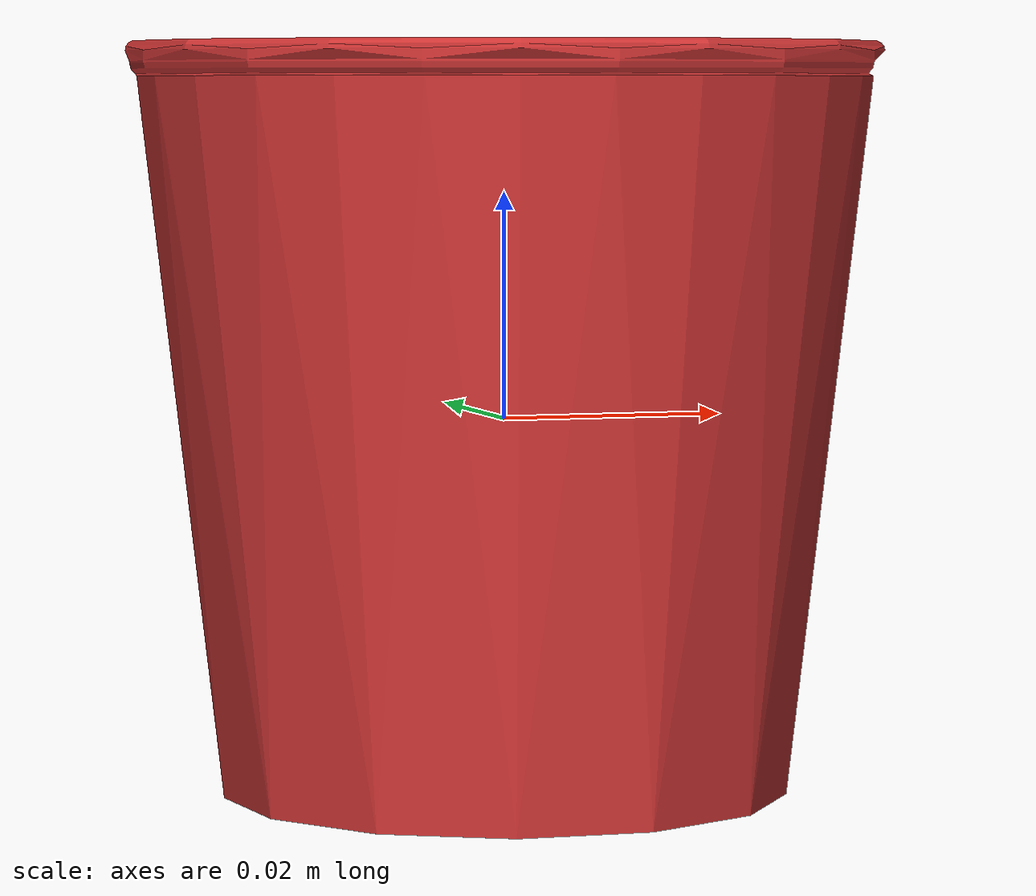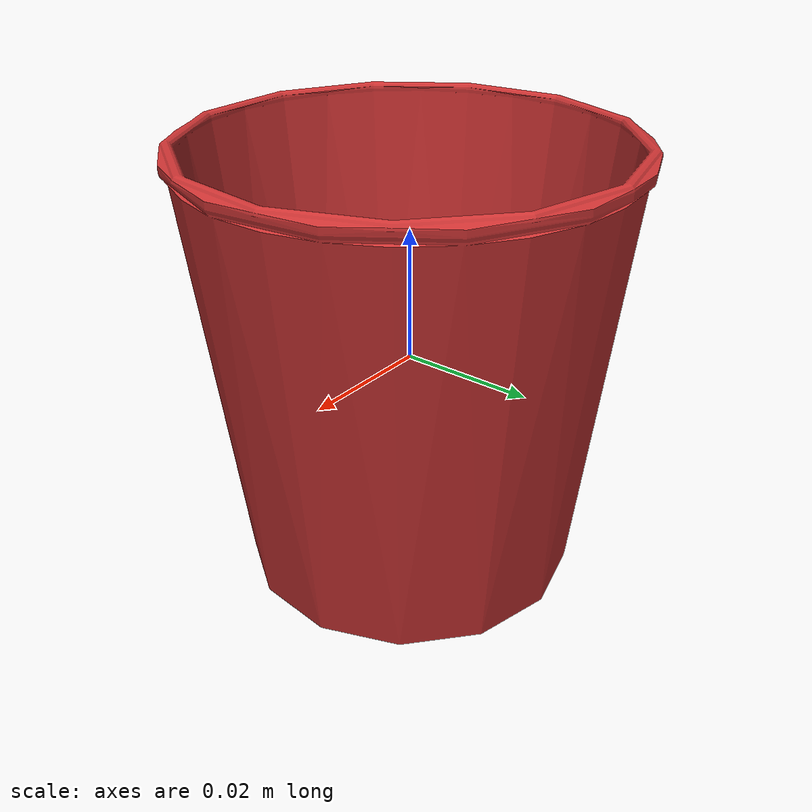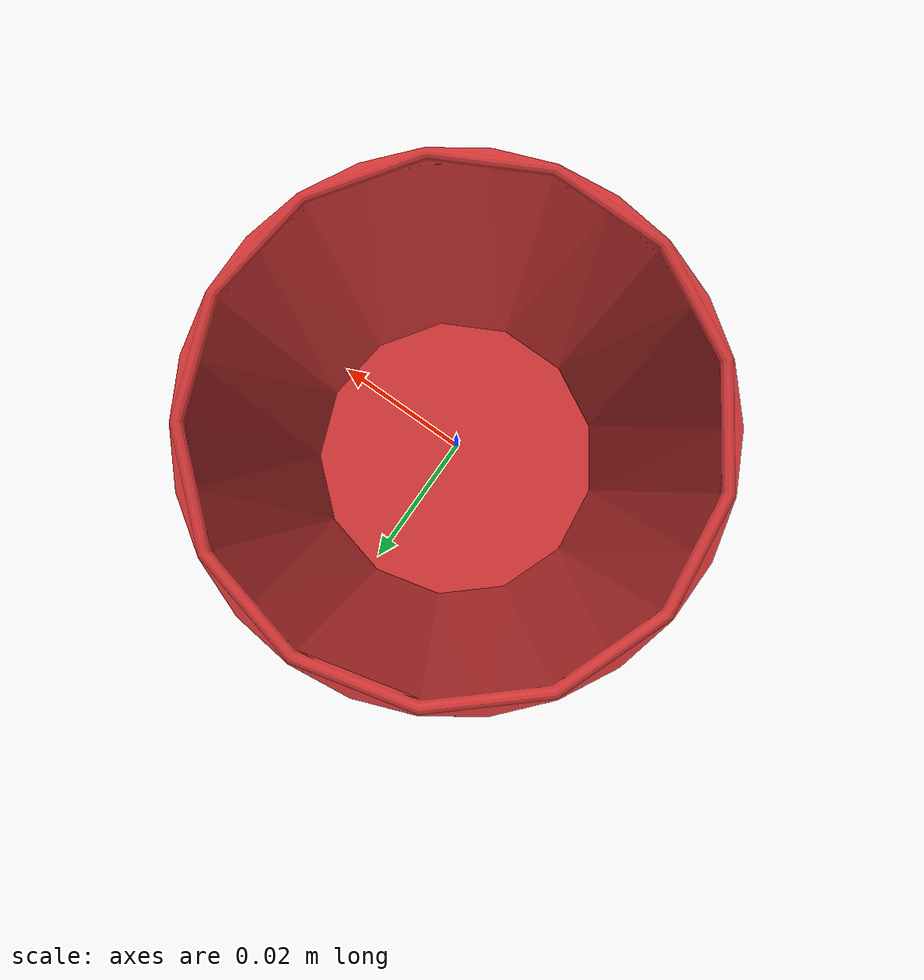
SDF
<?xml version="1.0"?>
<sdf version="1.7">
  <model name="cup">
    <static>true</static>
    <link name="link">
      <inertial>
        <mass>0.1</mass>
        <inertia>
          <ixx>0.000025</ixx>
          <iyy>0.000025</iyy>
          <izz>0.000005</izz>
          <ixy>0</ixy>
          <ixz>0</ixz>
          <iyz>0</iyz>
        </inertia>
      </inertial>
      <visual name="visual">
        <geometry>
          <mesh>
            <uri>model://meshes/cup.stl</uri>
            <scale>0.001 0.001 0.001</scale>
          </mesh>
        </geometry>
        <material>
          <ambient>0.8 0.2 0.2 1</ambient>
          <diffuse>0.8 0.2 0.2 1</diffuse>
          <specular>0.2 0.2 0.2 1</specular>
        </material>
      </visual>
      <collision
        name="collision">
        <geometry>
          <mesh>
            <uri>model://meshes/cup.stl</uri>
            <scale>0.001 0.001 0.001</scale>
          </mesh>
        </geometry>
        <surface>
          <contact>
            <ode>
              <max_vel>0.1</max_vel>
              <min_depth>0.001</min_depth>
              <kp>1000000.0</kp>
              <kd>1.0</kd>
            </ode>
          </contact>
          <friction>
            <ode>
              <mu>0.5</mu>
              <mu2>0.5</mu2>
              <slip1>0.0</slip1>
              <slip2>0.0</slip2>
            </ode>
          </friction>
        </surface>
      </collision>
      --> </link>
  </model>
</sdf>
